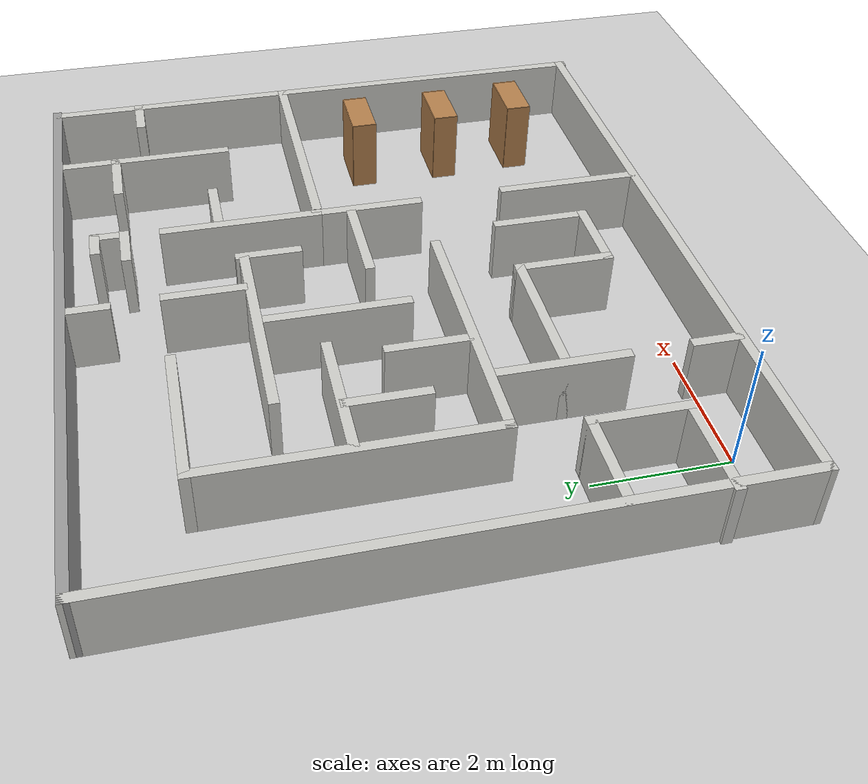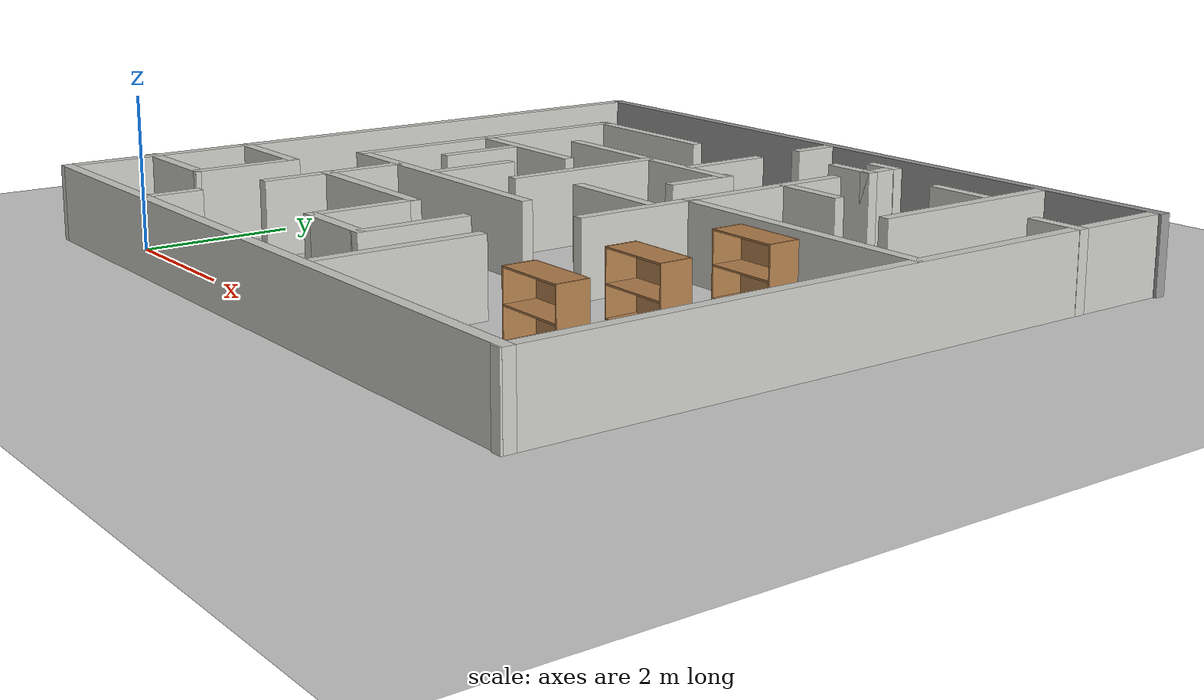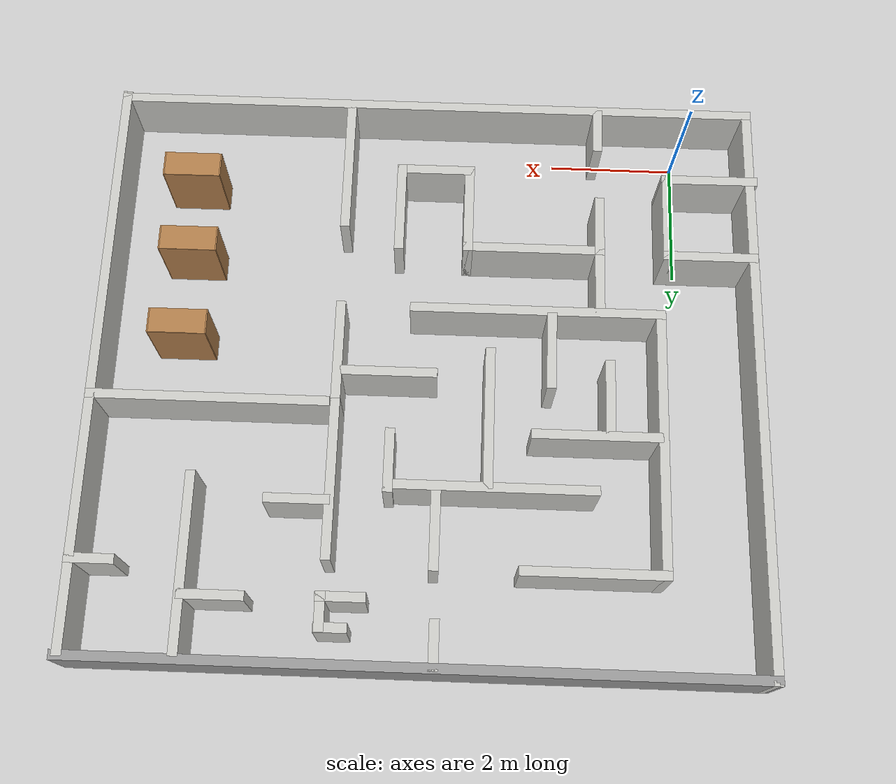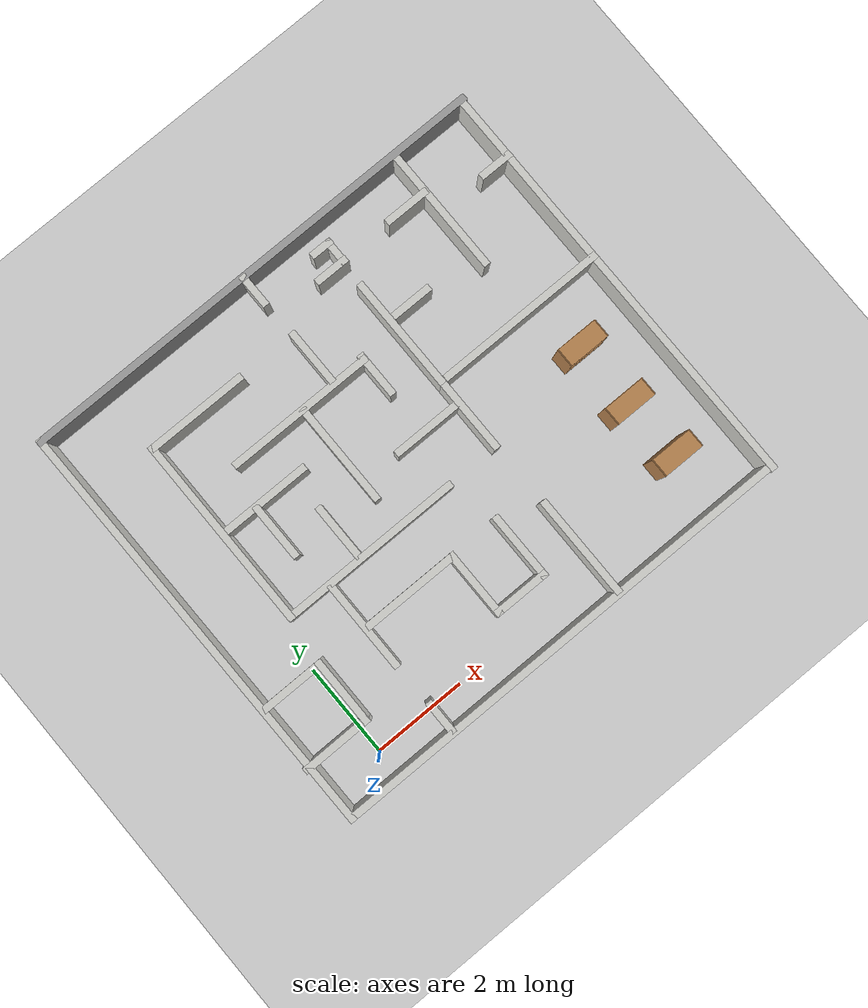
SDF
<sdf version="1.7">
 <world name="default">
  <light name="sun" type="directional">
   <pose>0 0 10 0 -0 0</pose>
   <diffuse>0.8 0.8 0.8 1</diffuse>
   <specular>0.2 0.2 0.2 1</specular>
   <attenuation>
    <range>1000</range>
    <constant>0.9</constant>
    <linear>0.01</linear>
    <quadratic>0.001</quadratic>
   </attenuation>
   <direction>-0.5 0.1 -0.9</direction>
   <spot><inner_angle>0</inner_angle><outer_angle>0</outer_angle><falloff>0</falloff></spot>
  </light>
  <model name="ground_plane">
   <static>1</static>
   <link name="link">
    <collision name="collision">
     <geometry><plane><normal>0 0 1</normal><size>100 100</size></plane></geometry>
     <surface><friction><ode><mu>100</mu><mu2>50</mu2></ode></friction></surface>
    </collision>
    <visual name="visual">
     <cast_shadows>0</cast_shadows>
     <geometry><plane><normal>0 0 1</normal><size>100 100</size></plane></geometry>
     <material>
      <script><uri>file://media/materials/scripts/gazebo.material</uri><name>Gazebo/Grey</name></script>
     </material>
    </visual>
   </link>
  </model>
  <gravity>0 0 -9.8</gravity>
  <magnetic_field>6e-06 2.3e-05 -4.2e-05</magnetic_field>
  <atmosphere type="adiabatic"/>
  <physics type="ode">
   <max_step_size>0.001</max_step_size>
   <real_time_factor>1</real_time_factor>
   <real_time_update_rate>1000</real_time_update_rate>
  </physics>
  <scene><ambient>0.4 0.4 0.4 1</ambient><background>0.7 0.7 0.7 1</background><shadows>1</shadows></scene>
  <spherical_coordinates>
   <surface_model>EARTH_WGS84</surface_model>
   <latitude_deg>0</latitude_deg>
   <longitude_deg>0</longitude_deg>
   <elevation>0</elevation>
   <heading_deg>0</heading_deg>
  </spherical_coordinates>
  <model name="migong">
   <pose>4.00896 4.00095 0 0 -0 0</pose>
   <link name="Wall_0">
    <collision name="Wall_0_Collision">
     <geometry><box><size>9.29058 0.15 1</size></box></geometry>
     <pose>0 0 0.5 0 -0 0</pose>
    </collision>
    <visual name="Wall_0_Visual">
     <pose>0 0 0.5 0 -0 0</pose>
     <geometry><box><size>9.29058 0.15 1</size></box></geometry>
     <material>
      <script><uri>file://media/materials/scripts/gazebo.material</uri><name>Gazebo/CeilingTiled</name></script>
      <ambient>1 1 1 1</ambient>
     </material>
     <meta><layer>0</layer></meta>
    </visual>
    <pose>-5.14475 0.010646 0 0 -0 1.57736</pose>
   </link>
   <link name="Wall_10">
    <collision name="Wall_10_Collision">
     <geometry><box><size>3.75 0.15 1</size></box></geometry>
     <pose>0 0 0.5 0 -0 0</pose>
    </collision>
    <visual name="Wall_10_Visual">
     <pose>0 0 0.5 0 -0 0</pose>
     <geometry><box><size>3.75 0.15 1</size></box></geometry>
     <material>
      <script><uri>file://media/materials/scripts/gazebo.material</uri><name>Gazebo/CeilingTiled</name></script>
      <ambient>1 1 1 1</ambient>
     </material>
     <meta><layer>0</layer></meta>
    </visual>
    <pose>3.33325 0.634646 0 0 -0 0</pose>
   </link>
   <link name="Wall_12">
    <collision name="Wall_12_Collision">
     <geometry><box><size>2.5 0.15 1</size></box></geometry>
     <pose>0 0 0.5 0 -0 0</pose>
    </collision>
    <visual name="Wall_12_Visual">
     <pose>0 0 0.5 0 -0 0</pose>
     <geometry><box><size>2.5 0.15 1</size></box></geometry>
     <material>
      <script><uri>file://media/materials/scripts/gazebo.material</uri><name>Gazebo/CeilingTiled</name></script>
      <ambient>1 1 1 1</ambient>
     </material>
     <meta><layer>0</layer></meta>
    </visual>
    <pose>1.37425 1.83165 0 0 -0 -1.5708</pose>
   </link>
   <link name="Wall_14">
    <collision name="Wall_14_Collision">
     <geometry><box><size>1 0.15 1</size></box></geometry>
     <pose>0 0 0.5 0 -0 0</pose>
    </collision>
    <visual name="Wall_14_Visual">
     <pose>0 0 0.5 0 -0 0</pose>
     <geometry><box><size>1 0.15 1</size></box></geometry>
     <material>
      <script><uri>file://media/materials/scripts/gazebo.material</uri><name>Gazebo/CeilingTiled</name></script>
      <ambient>1 1 1 1</ambient>
     </material>
     <meta><layer>0</layer></meta>
    </visual>
    <pose>3.01625 3.64565 0 0 -0 0</pose>
   </link>
   <link name="Wall_16">
    <collision name="Wall_16_Collision">
     <geometry><box><size>1 0.15 1</size></box></geometry>
     <pose>0 0 0.5 0 -0 0</pose>
    </collision>
    <visual name="Wall_16_Visual">
     <pose>0 0 0.5 0 -0 0</pose>
     <geometry><box><size>1 0.15 1</size></box></geometry>
     <material>
      <script><uri>file://media/materials/scripts/gazebo.material</uri><name>Gazebo/CeilingTiled</name></script>
      <ambient>1 1 1 1</ambient>
     </material>
     <meta><layer>0</layer></meta>
    </visual>
    <pose>1.86325 2.17365 0 0 -0 3.14159</pose>
   </link>
   <link name="Wall_18">
    <collision name="Wall_18_Collision">
     <geometry><box><size>0.75 0.15 1</size></box></geometry>
     <pose>0 0 0.5 0 -0 0</pose>
    </collision>
    <visual name="Wall_18_Visual">
     <pose>0 0 0.5 0 -0 0</pose>
     <geometry><box><size>0.75 0.15 1</size></box></geometry>
     <material>
      <script><uri>file://media/materials/scripts/gazebo.material</uri><name>Gazebo/CeilingTiled</name></script>
      <ambient>1 1 1 1</ambient>
     </material>
     <meta><layer>0</layer></meta>
    </visual>
    <pose>4.83925 3.17665 0 0 -0 0</pose>
   </link>
   <link name="Wall_2">
    <collision name="Wall_2_Collision">
     <geometry><box><size>10.3998 0.15 1</size></box></geometry>
     <pose>0 0 0.5 0 -0 0</pose>
    </collision>
    <visual name="Wall_2_Visual">
     <pose>0 0 0.5 0 -0 0</pose>
     <geometry><box><size>10.3998 0.15 1</size></box></geometry>
     <material>
      <script><uri>file://media/materials/scripts/gazebo.material</uri><name>Gazebo/CeilingTiled</name></script>
      <ambient>1 1 1 1</ambient>
     </material>
     <meta><layer>0</layer></meta>
    </visual>
    <pose>0.010032 -4.55704 0 0 -0 0.000451</pose>
   </link>
   <link name="Wall_20">
    <collision name="Wall_20_Collision">
     <geometry><box><size>1.75 0.15 1</size></box></geometry>
     <pose>0 0 0.5 0 -0 0</pose>
    </collision>
    <visual name="Wall_20_Visual">
     <pose>0 0 0.5 0 -0 0</pose>
     <geometry><box><size>1.75 0.15 1</size></box></geometry>
     <material>
      <script><uri>file://media/materials/scripts/gazebo.material</uri><name>Gazebo/CeilingTiled</name></script>
      <ambient>1 1 1 1</ambient>
     </material>
     <meta><layer>0</layer></meta>
    </visual>
    <pose>1.37425 -0.143354 0 0 -0 -1.5708</pose>
   </link>
   <link name="Wall_22">
    <collision name="Wall_22_Collision">
     <geometry><box><size>2.25 0.15 1</size></box></geometry>
     <pose>0 0 0.5 0 -0 0</pose>
    </collision>
    <visual name="Wall_22_Visual">
     <pose>0 0 0.5 0 -0 0</pose>
     <geometry><box><size>2.25 0.15 1</size></box></geometry>
     <material>
      <script><uri>file://media/materials/scripts/gazebo.material</uri><name>Gazebo/CeilingTiled</name></script>
      <ambient>1 1 1 1</ambient>
     </material>
     <meta><layer>0</layer></meta>
    </visual>
    <pose>1.39125 -3.43835 0 0 -0 -1.5708</pose>
   </link>
   <link name="Wall_26">
    <collision name="Wall_26_Collision">
     <geometry><box><size>2.25 0.15 1</size></box></geometry>
     <pose>0 0 0.5 0 -0 0</pose>
    </collision>
    <visual name="Wall_26_Visual">
     <pose>0 0 0.5 0 -0 0</pose>
     <geometry><box><size>2.25 0.15 1</size></box></geometry>
     <material>
      <script><uri>file://media/materials/scripts/gazebo.material</uri><name>Gazebo/CeilingTiled</name></script>
      <ambient>1 1 1 1</ambient>
     </material>
     <meta><layer>0</layer></meta>
    </visual>
    <pose>-2.58375 3.13365 0 0 -0 0</pose>
   </link>
   <link name="Wall_28">
    <collision name="Wall_28_Collision">
     <geometry><box><size>0.75 0.15 1</size></box></geometry>
     <pose>0 0 0.5 0 -0 0</pose>
    </collision>
    <visual name="Wall_28_Visual">
     <pose>0 0 0.5 0 -0 0</pose>
     <geometry><box><size>0.75 0.15 1</size></box></geometry>
     <material>
      <script><uri>file://media/materials/scripts/gazebo.material</uri><name>Gazebo/CeilingTiled</name></script>
      <ambient>1 1 1 1</ambient>
     </material>
     <meta><layer>0</layer></meta>
    </visual>
    <pose>-0.253754 4.25065 0 0 -0 1.5708</pose>
   </link>
   <link name="Wall_3">
    <collision name="Wall_3_Collision">
     <geometry><box><size>9.25 0.15 1</size></box></geometry>
     <pose>0 0 0.5 0 -0 0</pose>
    </collision>
    <visual name="Wall_3_Visual">
     <pose>0 0 0.5 0 -0 0</pose>
     <geometry><box><size>9.25 0.15 1</size></box></geometry>
     <material>
      <script><uri>file://media/materials/scripts/gazebo.material</uri><name>Gazebo/CeilingTiled</name></script>
      <ambient>1 1 1 1</ambient>
     </material>
     <meta><layer>0</layer></meta>
    </visual>
    <pose>5.13482 -0.031328 0 0 -0 1.5708</pose>
   </link>
   <link name="Wall_30">
    <collision name="Wall_30_Collision">
     <geometry><box><size>0.5 0.15 1</size></box></geometry>
     <pose>0 0 0.5 0 -0 0</pose>
    </collision>
    <visual name="Wall_30_Visual">
     <pose>0 0 0.5 0 -0 0</pose>
     <geometry><box><size>0.5 0.15 1</size></box></geometry>
     <material>
      <script><uri>file://media/materials/scripts/gazebo.material</uri><name>Gazebo/CeilingTiled</name></script>
      <ambient>1 1 1 1</ambient>
     </material>
     <meta><layer>0</layer></meta>
    </visual>
    <pose>1.24925 4.05765 0 0 -0 0</pose>
   </link>
   <link name="Wall_31">
    <collision name="Wall_31_Collision">
     <geometry><box><size>0.59 0.15 1</size></box></geometry>
     <pose>0 0 0.5 0 -0 0</pose>
    </collision>
    <visual name="Wall_31_Visual">
     <pose>0 0 0.5 0 -0 0</pose>
     <geometry><box><size>0.59 0.15 1</size></box></geometry>
     <material>
      <script><uri>file://media/materials/scripts/gazebo.material</uri><name>Gazebo/CeilingTiled</name></script>
      <ambient>1 1 1 1</ambient>
     </material>
     <meta><layer>0</layer></meta>
    </visual>
    <pose>1.41425 3.82765 0 0 -0 -1.5708</pose>
   </link>
   <link name="Wall_32">
    <collision name="Wall_32_Collision">
     <geometry><box><size>0.75 0.15 1</size></box></geometry>
     <pose>0 0 0.5 0 -0 0</pose>
    </collision>
    <visual name="Wall_32_Visual">
     <pose>0 0 0.5 0 -0 0</pose>
     <geometry><box><size>0.75 0.15 1</size></box></geometry>
     <material>
      <script><uri>file://media/materials/scripts/gazebo.material</uri><name>Gazebo/CeilingTiled</name></script>
      <ambient>1 1 1 1</ambient>
     </material>
     <meta><layer>0</layer></meta>
    </visual>
    <pose>1.12425 3.60765 0 0 -0 3.14159</pose>
   </link>
   <link name="Wall_41">
    <collision name="Wall_41_Collision">
     <geometry><box><size>4.25 0.15 1</size></box></geometry>
     <pose>0 0 0.5 0 -0 0</pose>
    </collision>
    <visual name="Wall_41_Visual">
     <pose>0 0 0.5 0 -0 0</pose>
     <geometry><box><size>4.25 0.15 1</size></box></geometry>
     <material>
      <script><uri>file://media/materials/scripts/gazebo.material</uri><name>Gazebo/CeilingTiled</name></script>
      <ambient>1 1 1 1</ambient>
     </material>
     <meta><layer>0</layer></meta>
    </visual>
    <pose>-3.63375 1.08365 0 0 -0 -1.5708</pose>
   </link>
   <link name="Wall_43">
    <collision name="Wall_43_Collision">
     <geometry><box><size>3.25 0.15 1</size></box></geometry>
     <pose>0 0 0.5 0 -0 0</pose>
    </collision>
    <visual name="Wall_43_Visual">
     <pose>0 0 0.5 0 -0 0</pose>
     <geometry><box><size>3.25 0.15 1</size></box></geometry>
     <material>
      <script><uri>file://media/materials/scripts/gazebo.material</uri><name>Gazebo/CeilingTiled</name></script>
      <ambient>1 1 1 1</ambient>
     </material>
     <meta><layer>0</layer></meta>
    </visual>
    <pose>-1.04375 1.89765 0 0 -0 0</pose>
   </link>
   <link name="Wall_45">
    <collision name="Wall_45_Collision">
     <geometry><box><size>1.25 0.15 1</size></box></geometry>
     <pose>0 0 0.5 0 -0 0</pose>
    </collision>
    <visual name="Wall_45_Visual">
     <pose>0 0 0.5 0 -0 0</pose>
     <geometry><box><size>1.25 0.15 1</size></box></geometry>
     <material>
      <script><uri>file://media/materials/scripts/gazebo.material</uri><name>Gazebo/CeilingTiled</name></script>
      <ambient>1 1 1 1</ambient>
     </material>
     <meta><layer>0</layer></meta>
    </visual>
    <pose>-0.212754 2.55865 0 0 -0 -1.5708</pose>
   </link>
   <link name="Wall_49">
    <collision name="Wall_49_Collision">
     <geometry><box><size>4 0.15 1</size></box></geometry>
     <pose>0 0 0.5 0 -0 0</pose>
    </collision>
    <visual name="Wall_49_Visual">
     <pose>0 0 0.5 0 -0 0</pose>
     <geometry><box><size>4 0.15 1</size></box></geometry>
     <material>
      <script><uri>file://media/materials/scripts/gazebo.material</uri><name>Gazebo/CeilingTiled</name></script>
      <ambient>1 1 1 1</ambient>
     </material>
     <meta><layer>0</layer></meta>
    </visual>
    <pose>-1.70875 -0.966354 0 0 -0 0</pose>
   </link>
   <link name="Wall_5">
    <collision name="Wall_5_Collision">
     <geometry><box><size>10.5 0.15 1</size></box></geometry>
     <pose>0 0 0.5 0 -0 0</pose>
    </collision>
    <visual name="Wall_5_Visual">
     <pose>0 0 0.5 0 -0 0</pose>
     <geometry><box><size>10.5 0.15 1</size></box></geometry>
     <material>
      <script><uri>file://media/materials/scripts/gazebo.material</uri><name>Gazebo/Grey</name></script>
      <ambient>1 1 1 1</ambient>
     </material>
     <meta><layer>0</layer></meta>
    </visual>
    <pose>0.000246 4.58065 0 0 -0 0</pose>
   </link>
   <link name="Wall_52">
    <collision name="Wall_52_Collision">
     <geometry><box><size>2 0.15 1</size></box></geometry>
     <pose>0 0 0.5 0 -0 0</pose>
    </collision>
    <visual name="Wall_52_Visual">
     <pose>0 0 0.5 0 -0 0</pose>
     <geometry><box><size>2 0.15 1</size></box></geometry>
     <material>
      <script><uri>file://media/materials/scripts/gazebo.material</uri><name>Gazebo/CeilingTiled</name></script>
      <ambient>1 1 1 1</ambient>
     </material>
     <meta><layer>0</layer></meta>
    </visual>
    <pose>-2.62575 1.03965 0 0 -0 0</pose>
   </link>
   <link name="Wall_54">
    <collision name="Wall_54_Collision">
     <geometry><box><size>2.25 0.15 1</size></box></geometry>
     <pose>0 0 0.5 0 -0 0</pose>
    </collision>
    <visual name="Wall_54_Visual">
     <pose>0 0 0.5 0 -0 0</pose>
     <geometry><box><size>2.25 0.15 1</size></box></geometry>
     <material>
      <script><uri>file://media/materials/scripts/gazebo.material</uri><name>Gazebo/CeilingTiled</name></script>
      <ambient>1 1 1 1</ambient>
     </material>
     <meta><layer>0</layer></meta>
    </visual>
    <pose>-0.982754 0.799646 0 0 -0 -1.5708</pose>
   </link>
   <link name="Wall_57">
    <collision name="Wall_57_Collision">
     <geometry><box><size>1.25 0.15 1</size></box></geometry>
     <pose>0 0 0.5 0 -0 0</pose>
    </collision>
    <visual name="Wall_57_Visual">
     <pose>0 0 0.5 0 -0 0</pose>
     <geometry><box><size>1.25 0.15 1</size></box></geometry>
     <material>
      <script><uri>file://media/materials/scripts/gazebo.material</uri><name>Gazebo/CeilingTiled</name></script>
      <ambient>1 1 1 1</ambient>
     </material>
     <meta><layer>0</layer></meta>
    </visual>
    <pose>-1.93175 -0.319354 0 0 -0 -1.5708</pose>
   </link>
   <link name="Wall_59">
    <collision name="Wall_59_Collision">
     <geometry><box><size>1.25 0.15 1</size></box></geometry>
     <pose>0 0 0.5 0 -0 0</pose>
    </collision>
    <visual name="Wall_59_Visual">
     <pose>0 0 0.5 0 -0 0</pose>
     <geometry><box><size>1.25 0.15 1</size></box></geometry>
     <material>
      <script><uri>file://media/materials/scripts/gazebo.material</uri><name>Gazebo/CeilingTiled</name></script>
      <ambient>0.760784 0.662745 0.627451 1</ambient>
     </material>
     <meta><layer>0</layer></meta>
    </visual>
    <pose>-2.83375 0.443646 0 0 -0 -1.5708</pose>
   </link>
   <link name="Wall_64">
    <collision name="Wall_64_Collision">
     <geometry><box><size>1.5 0.15 1</size></box></geometry>
     <pose>0 0 0.5 0 -0 0</pose>
    </collision>
    <visual name="Wall_64_Visual">
     <pose>0 0 0.5 0 -0 0</pose>
     <geometry><box><size>1.5 0.15 1</size></box></geometry>
     <material>
      <script><uri>file://media/materials/scripts/gazebo.material</uri><name>Gazebo/CeilingTiled</name></script>
      <ambient>1 1 1 1</ambient>
     </material>
     <meta><layer>0</layer></meta>
    </visual>
    <pose>0.577246 0.120646 0 0 -0 0</pose>
   </link>
   <link name="Wall_66">
    <collision name="Wall_66_Collision">
     <geometry><box><size>1 0.15 1</size></box></geometry>
     <pose>0 0 0.5 0 -0 0</pose>
    </collision>
    <visual name="Wall_66_Visual">
     <pose>0 0 0.5 0 -0 0</pose>
     <geometry><box><size>1 0.15 1</size></box></geometry>
     <material>
      <script><uri>file://media/materials/scripts/gazebo.material</uri><name>Gazebo/CeilingTiled</name></script>
      <ambient>1 1 1 1</ambient>
     </material>
     <meta><layer>0</layer></meta>
    </visual>
    <pose>0.514495 1.52653 0 0 -0 -1.5708</pose>
   </link>
   <link name="Wall_8">
    <collision name="Wall_8_Collision">
     <geometry><box><size>2.75 0.15 1</size></box></geometry>
     <pose>0 0 0.5 0 -0 0</pose>
    </collision>
    <visual name="Wall_8_Visual">
     <pose>0 0 0.5 0 -0 0</pose>
     <geometry><box><size>2.75 0.15 1</size></box></geometry>
     <material>
      <script><uri>file://media/materials/scripts/gazebo.material</uri><name>Gazebo/CeilingTiled</name></script>
      <ambient>1 1 1 1</ambient>
     </material>
     <meta><layer>0</layer></meta>
    </visual>
    <pose>3.47325 3.16665 0 0 -0 -1.5708</pose>
   </link>
   <link name="Wall_80">
    <collision name="Wall_80_Collision">
     <geometry><box><size>2 0.15 1</size></box></geometry>
     <pose>0 0 0.5 0 -0 0</pose>
    </collision>
    <visual name="Wall_80_Visual">
     <pose>0 0 0.5 0 -0 0</pose>
     <geometry><box><size>2 0.15 1</size></box></geometry>
     <material>
      <script><uri>file://media/materials/scripts/gazebo.material</uri><name>Gazebo/CeilingTiled</name></script>
      <ambient>1 1 1 1</ambient>
     </material>
     <meta><layer>0</layer></meta>
    </visual>
    <pose>-2.68575 -1.96835 0 0 -0 -1.5708</pose>
   </link>
   <link name="Wall_82">
    <collision name="Wall_82_Collision">
     <geometry><box><size>2.25 0.15 1</size></box></geometry>
     <pose>0 0 0.5 0 -0 0</pose>
    </collision>
    <visual name="Wall_82_Visual">
     <pose>0 0 0.5 0 -0 0</pose>
     <geometry><box><size>2.25 0.15 1</size></box></geometry>
     <material>
      <script><uri>file://media/materials/scripts/gazebo.material</uri><name>Gazebo/CeilingTiled</name></script>
      <ambient>1 1 1 1</ambient>
     </material>
     <meta><layer>0</layer></meta>
    </visual>
    <pose>-1.63575 -2.03235 0 0 -0 0</pose>
   </link>
   <link name="Wall_83">
    <collision name="Wall_83_Collision">
     <geometry><box><size>1.5 0.15 1</size></box></geometry>
     <pose>0 0 0.5 0 -0 0</pose>
    </collision>
    <visual name="Wall_83_Visual">
     <pose>0 0 0.5 0 -0 0</pose>
     <geometry><box><size>1.5 0.15 1</size></box></geometry>
     <material>
      <script><uri>file://media/materials/scripts/gazebo.material</uri><name>Gazebo/CeilingTiled</name></script>
      <ambient>1 1 1 1</ambient>
     </material>
     <meta><layer>0</layer></meta>
    </visual>
    <pose>-0.585754 -2.70735 0 0 -0 -1.5708</pose>
   </link>
   <link name="Wall_84">
    <collision name="Wall_84_Collision">
     <geometry><box><size>1.25 0.15 1</size></box></geometry>
     <pose>0 0 0.5 0 -0 0</pose>
    </collision>
    <visual name="Wall_84_Visual">
     <pose>0 0 0.5 0 -0 0</pose>
     <geometry><box><size>1.25 0.15 1</size></box></geometry>
     <material>
      <script><uri>file://media/materials/scripts/gazebo.material</uri><name>Gazebo/CeilingTiled</name></script>
      <ambient>1 1 1 1</ambient>
     </material>
     <meta><layer>0</layer></meta>
    </visual>
    <pose>-0.035754 -3.38235 0 0 -0 0</pose>
   </link>
   <link name="Wall_85">
    <collision name="Wall_85_Collision">
     <geometry><box><size>1.5 0.15 1</size></box></geometry>
     <pose>0 0 0.5 0 -0 0</pose>
    </collision>
    <visual name="Wall_85_Visual">
     <pose>0 0 0.5 0 -0 0</pose>
     <geometry><box><size>1.5 0.15 1</size></box></geometry>
     <material>
      <script><uri>file://media/materials/scripts/gazebo.material</uri><name>Gazebo/CeilingTiled</name></script>
      <ambient>1 1 1 1</ambient>
     </material>
     <meta><layer>0</layer></meta>
    </visual>
    <pose>0.514246 -2.70735 0 0 -0 1.5708</pose>
   </link>
   <link name="Wall_87">
    <collision name="Wall_87_Collision">
     <geometry><box><size>0.75 0.15 1</size></box></geometry>
     <pose>0 0 0.5 0 -0 0</pose>
    </collision>
    <visual name="Wall_87_Visual">
     <pose>0 0 0.5 0 -0 0</pose>
     <geometry><box><size>0.75 0.15 1</size></box></geometry>
     <material>
      <script><uri>file://media/materials/scripts/gazebo.material</uri><name>Gazebo/CeilingTiled</name></script>
      <ambient>1 1 1 1</ambient>
     </material>
     <meta><layer>0</layer></meta>
    </visual>
    <pose>-2.66275 -4.19535 0 0 -0 -1.5708</pose>
   </link>
   <link name="Wall_89">
    <collision name="Wall_89_Collision">
     <geometry><box><size>1.5 0.15 1</size></box></geometry>
     <pose>0 0 0.5 0 -0 0</pose>
    </collision>
    <visual name="Wall_89_Visual">
     <pose>0 0 0.5 0 -0 0</pose>
     <geometry><box><size>1.5 0.15 1</size></box></geometry>
     <material>
      <script><uri>file://media/materials/scripts/gazebo.material</uri><name>Gazebo/CeilingTiled</name></script>
      <ambient>1 1 1 1</ambient>
     </material>
     <meta><layer>0</layer></meta>
    </visual>
    <pose>-4.44875 -1.98635 0 0 -0 0</pose>
   </link>
   <link name="Wall_90">
    <collision name="Wall_90_Collision">
     <geometry><box><size>1.5 0.15 1</size></box></geometry>
     <pose>0 0 0.5 0 -0 0</pose>
    </collision>
    <visual name="Wall_90_Visual">
     <pose>0 0 0.5 0 -0 0</pose>
     <geometry><box><size>1.5 0.15 1</size></box></geometry>
     <material>
      <script><uri>file://media/materials/scripts/gazebo.material</uri><name>Gazebo/CeilingTiled</name></script>
      <ambient>1 1 1 1</ambient>
     </material>
     <meta><layer>0</layer></meta>
    </visual>
    <pose>-3.77375 -2.66135 0 0 -0 -1.5708</pose>
   </link>
   <link name="Wall_92">
    <collision name="Wall_92_Collision">
     <geometry><box><size>1.54602 0.15 1</size></box></geometry>
     <pose>0 0 0.5 0 -0 0</pose>
    </collision>
    <visual name="Wall_92_Visual">
     <pose>0 0 0.5 0 -0 0</pose>
     <geometry><box><size>1.54602 0.15 1</size></box></geometry>
     <material>
      <script><uri>file://media/materials/scripts/gazebo.material</uri><name>Gazebo/CeilingTiled</name></script>
      <ambient>1 1 1 1</ambient>
     </material>
     <meta><layer>0</layer></meta>
    </visual>
    <pose>-4.47175 -3.33985 0 0 -0 0.005014</pose>
   </link>
   <static>1</static>
  </model>
  <model name="bookshelf_clone">
   <static>1</static>
   <link name="link">
    <inertial><mass>1</mass></inertial>
    <collision name="back">
     <pose>0 0.005 0.6 0 -0 0</pose>
     <geometry><box><size>0.9 0.01 1.2</size></box></geometry>
    </collision>
    <visual name="visual1">
     <pose>0 0.005 0.6 0 -0 0</pose>
     <geometry><box><size>0.9 0.01 1.2</size></box></geometry>
     <material>
      <script><uri>file://media/materials/scripts/gazebo.material</uri><name>Gazebo/Wood</name></script>
     </material>
    </visual>
    <collision name="left_side">
     <pose>0.45 -0.195 0.6 0 -0 0</pose>
     <geometry><box><size>0.02 0.4 1.2</size></box></geometry>
    </collision>
    <visual name="visual2">
     <pose>0.45 -0.195 0.6 0 -0 0</pose>
     <geometry><box><size>0.02 0.4 1.2</size></box></geometry>
     <material>
      <script><uri>file://media/materials/scripts/gazebo.material</uri><name>Gazebo/Wood</name></script>
     </material>
    </visual>
    <collision name="right_side">
     <pose>-0.45 -0.195 0.6 0 -0 0</pose>
     <geometry><box><size>0.02 0.4 1.2</size></box></geometry>
    </collision>
    <visual name="visual3">
     <pose>-0.45 -0.195 0.6 0 -0 0</pose>
     <geometry><box><size>0.02 0.4 1.2</size></box></geometry>
     <material>
      <script><uri>file://media/materials/scripts/gazebo.material</uri><name>Gazebo/Wood</name></script>
     </material>
    </visual>
    <collision name="bottom">
     <pose>0 -0.195 0.03 0 -0 0</pose>
     <geometry><box><size>0.88 0.4 0.06</size></box></geometry>
    </collision>
    <visual name="visual4">
     <pose>0 -0.195 0.03 0 -0 0</pose>
     <geometry><box><size>0.88 0.4 0.06</size></box></geometry>
     <material>
      <script><uri>file://media/materials/scripts/gazebo.material</uri><name>Gazebo/Wood</name></script>
     </material>
    </visual>
    <collision name="top">
     <pose>0 -0.195 1.19 0 -0 0</pose>
     <geometry><box><size>0.88 0.4 0.02</size></box></geometry>
    </collision>
    <visual name="visual5">
     <pose>0 -0.195 1.19 0 -0 0</pose>
     <geometry><box><size>0.88 0.4 0.02</size></box></geometry>
     <material>
      <script><uri>file://media/materials/scripts/gazebo.material</uri><name>Gazebo/Wood</name></script>
     </material>
    </visual>
    <collision name="low_shelf">
     <pose>0 -0.195 0.43 0 -0 0</pose>
     <geometry><box><size>0.88 0.4 0.02</size></box></geometry>
    </collision>
    <visual name="visual6">
     <pose>0 -0.195 0.43 0 -0 0</pose>
     <geometry><box><size>0.88 0.4 0.02</size></box></geometry>
     <material>
      <script><uri>file://media/materials/scripts/gazebo.material</uri><name>Gazebo/Wood</name></script>
     </material>
    </visual>
    <collision name="high_shelf">
     <pose>0 -0.195 0.8 0 -0 0</pose>
     <geometry><box><size>0.88 0.4 0.02</size></box></geometry>
    </collision>
    <visual name="visual7">
     <pose>0 -0.195 0.8 0 -0 0</pose>
     <geometry><box><size>0.88 0.4 0.02</size></box></geometry>
     <material>
      <script><uri>file://media/materials/scripts/gazebo.material</uri><name>Gazebo/Wood</name></script>
     </material>
    </visual>
   </link>
   <pose>7.84769 2.26552 0 0 -0 0</pose>
  </model>
  <model name="bookshelf_clone_clone">
   <static>1</static>
   <link name="link">
    <inertial><mass>1</mass></inertial>
    <collision name="back">
     <pose>0 0.005 0.6 0 -0 0</pose>
     <geometry><box><size>0.9 0.01 1.2</size></box></geometry>
    </collision>
    <visual name="visual1">
     <pose>0 0.005 0.6 0 -0 0</pose>
     <geometry><box><size>0.9 0.01 1.2</size></box></geometry>
     <material>
      <script><uri>file://media/materials/scripts/gazebo.material</uri><name>Gazebo/Wood</name></script>
     </material>
    </visual>
    <collision name="left_side">
     <pose>0.45 -0.195 0.6 0 -0 0</pose>
     <geometry><box><size>0.02 0.4 1.2</size></box></geometry>
    </collision>
    <visual name="visual2">
     <pose>0.45 -0.195 0.6 0 -0 0</pose>
     <geometry><box><size>0.02 0.4 1.2</size></box></geometry>
     <material>
      <script><uri>file://media/materials/scripts/gazebo.material</uri><name>Gazebo/Wood</name></script>
     </material>
    </visual>
    <collision name="right_side">
     <pose>-0.45 -0.195 0.6 0 -0 0</pose>
     <geometry><box><size>0.02 0.4 1.2</size></box></geometry>
    </collision>
    <visual name="visual3">
     <pose>-0.45 -0.195 0.6 0 -0 0</pose>
     <geometry><box><size>0.02 0.4 1.2</size></box></geometry>
     <material>
      <script><uri>file://media/materials/scripts/gazebo.material</uri><name>Gazebo/Wood</name></script>
     </material>
    </visual>
    <collision name="bottom">
     <pose>0 -0.195 0.03 0 -0 0</pose>
     <geometry><box><size>0.88 0.4 0.06</size></box></geometry>
    </collision>
    <visual name="visual4">
     <pose>0 -0.195 0.03 0 -0 0</pose>
     <geometry><box><size>0.88 0.4 0.06</size></box></geometry>
     <material>
      <script><uri>file://media/materials/scripts/gazebo.material</uri><name>Gazebo/Wood</name></script>
     </material>
    </visual>
    <collision name="top">
     <pose>0 -0.195 1.19 0 -0 0</pose>
     <geometry><box><size>0.88 0.4 0.02</size></box></geometry>
    </collision>
    <visual name="visual5">
     <pose>0 -0.195 1.19 0 -0 0</pose>
     <geometry><box><size>0.88 0.4 0.02</size></box></geometry>
     <material>
      <script><uri>file://media/materials/scripts/gazebo.material</uri><name>Gazebo/Wood</name></script>
     </material>
    </visual>
    <collision name="low_shelf">
     <pose>0 -0.195 0.43 0 -0 0</pose>
     <geometry><box><size>0.88 0.4 0.02</size></box></geometry>
    </collision>
    <visual name="visual6">
     <pose>0 -0.195 0.43 0 -0 0</pose>
     <geometry><box><size>0.88 0.4 0.02</size></box></geometry>
     <material>
      <script><uri>file://media/materials/scripts/gazebo.material</uri><name>Gazebo/Wood</name></script>
     </material>
    </visual>
    <collision name="high_shelf">
     <pose>0 -0.195 0.8 0 -0 0</pose>
     <geometry><box><size>0.88 0.4 0.02</size></box></geometry>
    </collision>
    <visual name="visual7">
     <pose>0 -0.195 0.8 0 -0 0</pose>
     <geometry><box><size>0.88 0.4 0.02</size></box></geometry>
     <material>
      <script><uri>file://media/materials/scripts/gazebo.material</uri><name>Gazebo/Wood</name></script>
     </material>
    </visual>
   </link>
   <pose>7.88024 3.67615 0 0 -0 0</pose>
  </model>
  <model name="bookshelf_clone_clone_0">
   <static>1</static>
   <link name="link">
    <inertial><mass>1</mass></inertial>
    <collision name="back">
     <pose>0 0.005 0.6 0 -0 0</pose>
     <geometry><box><size>0.9 0.01 1.2</size></box></geometry>
    </collision>
    <visual name="visual1">
     <pose>0 0.005 0.6 0 -0 0</pose>
     <geometry><box><size>0.9 0.01 1.2</size></box></geometry>
     <material>
      <script><uri>file://media/materials/scripts/gazebo.material</uri><name>Gazebo/Wood</name></script>
     </material>
    </visual>
    <collision name="left_side">
     <pose>0.45 -0.195 0.6 0 -0 0</pose>
     <geometry><box><size>0.02 0.4 1.2</size></box></geometry>
    </collision>
    <visual name="visual2">
     <pose>0.45 -0.195 0.6 0 -0 0</pose>
     <geometry><box><size>0.02 0.4 1.2</size></box></geometry>
     <material>
      <script><uri>file://media/materials/scripts/gazebo.material</uri><name>Gazebo/Wood</name></script>
     </material>
    </visual>
    <collision name="right_side">
     <pose>-0.45 -0.195 0.6 0 -0 0</pose>
     <geometry><box><size>0.02 0.4 1.2</size></box></geometry>
    </collision>
    <visual name="visual3">
     <pose>-0.45 -0.195 0.6 0 -0 0</pose>
     <geometry><box><size>0.02 0.4 1.2</size></box></geometry>
     <material>
      <script><uri>file://media/materials/scripts/gazebo.material</uri><name>Gazebo/Wood</name></script>
     </material>
    </visual>
    <collision name="bottom">
     <pose>0 -0.195 0.03 0 -0 0</pose>
     <geometry><box><size>0.88 0.4 0.06</size></box></geometry>
    </collision>
    <visual name="visual4">
     <pose>0 -0.195 0.03 0 -0 0</pose>
     <geometry><box><size>0.88 0.4 0.06</size></box></geometry>
     <material>
      <script><uri>file://media/materials/scripts/gazebo.material</uri><name>Gazebo/Wood</name></script>
     </material>
    </visual>
    <collision name="top">
     <pose>0 -0.195 1.19 0 -0 0</pose>
     <geometry><box><size>0.88 0.4 0.02</size></box></geometry>
    </collision>
    <visual name="visual5">
     <pose>0 -0.195 1.19 0 -0 0</pose>
     <geometry><box><size>0.88 0.4 0.02</size></box></geometry>
     <material>
      <script><uri>file://media/materials/scripts/gazebo.material</uri><name>Gazebo/Wood</name></script>
     </material>
    </visual>
    <collision name="low_shelf">
     <pose>0 -0.195 0.43 0 -0 0</pose>
     <geometry><box><size>0.88 0.4 0.02</size></box></geometry>
    </collision>
    <visual name="visual6">
     <pose>0 -0.195 0.43 0 -0 0</pose>
     <geometry><box><size>0.88 0.4 0.02</size></box></geometry>
     <material>
      <script><uri>file://media/materials/scripts/gazebo.material</uri><name>Gazebo/Wood</name></script>
     </material>
    </visual>
    <collision name="high_shelf">
     <pose>0 -0.195 0.8 0 -0 0</pose>
     <geometry><box><size>0.88 0.4 0.02</size></box></geometry>
    </collision>
    <visual name="visual7">
     <pose>0 -0.195 0.8 0 -0 0</pose>
     <geometry><box><size>0.88 0.4 0.02</size></box></geometry>
     <material>
      <script><uri>file://media/materials/scripts/gazebo.material</uri><name>Gazebo/Wood</name></script>
     </material>
    </visual>
   </link>
   <pose>7.90117 0.958624 0 0 -0 0</pose>
  </model>
 </world>
</sdf>
